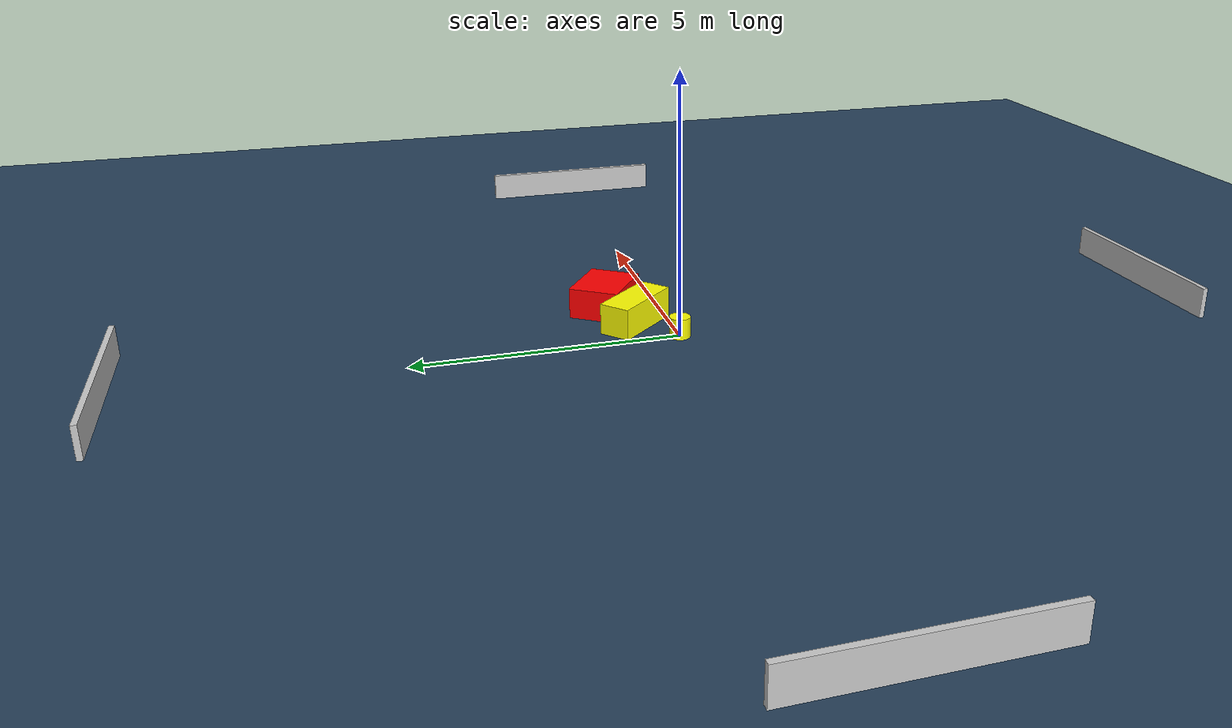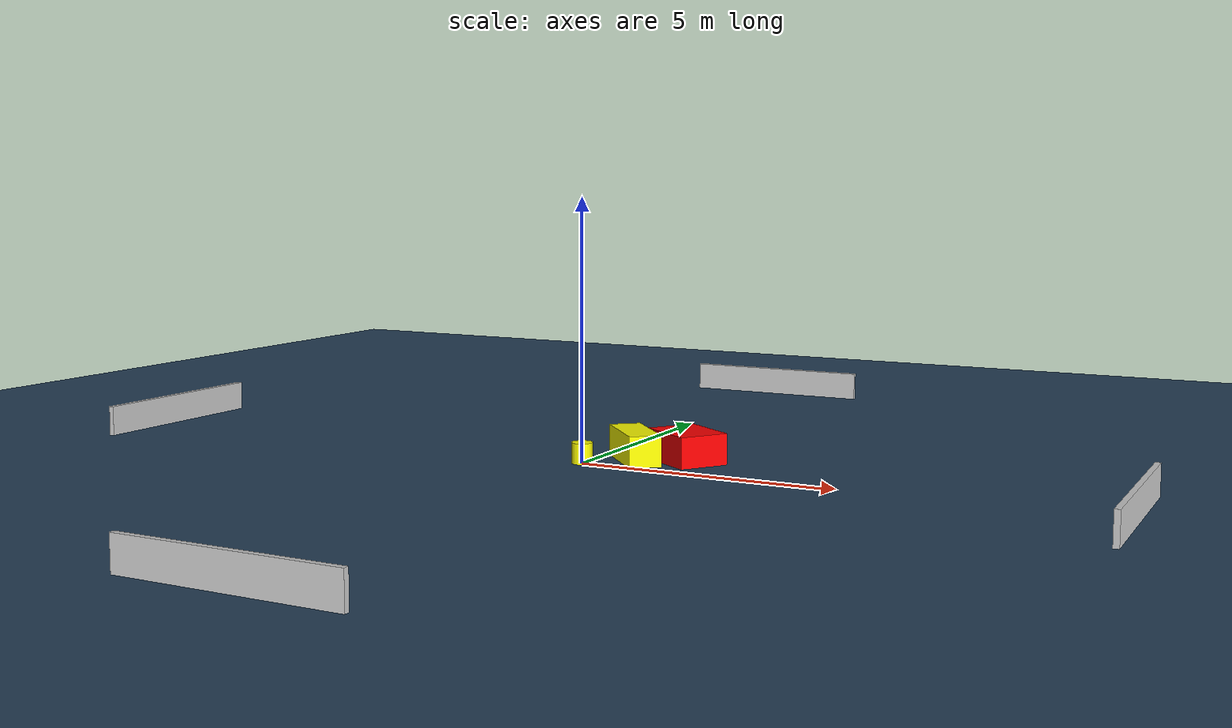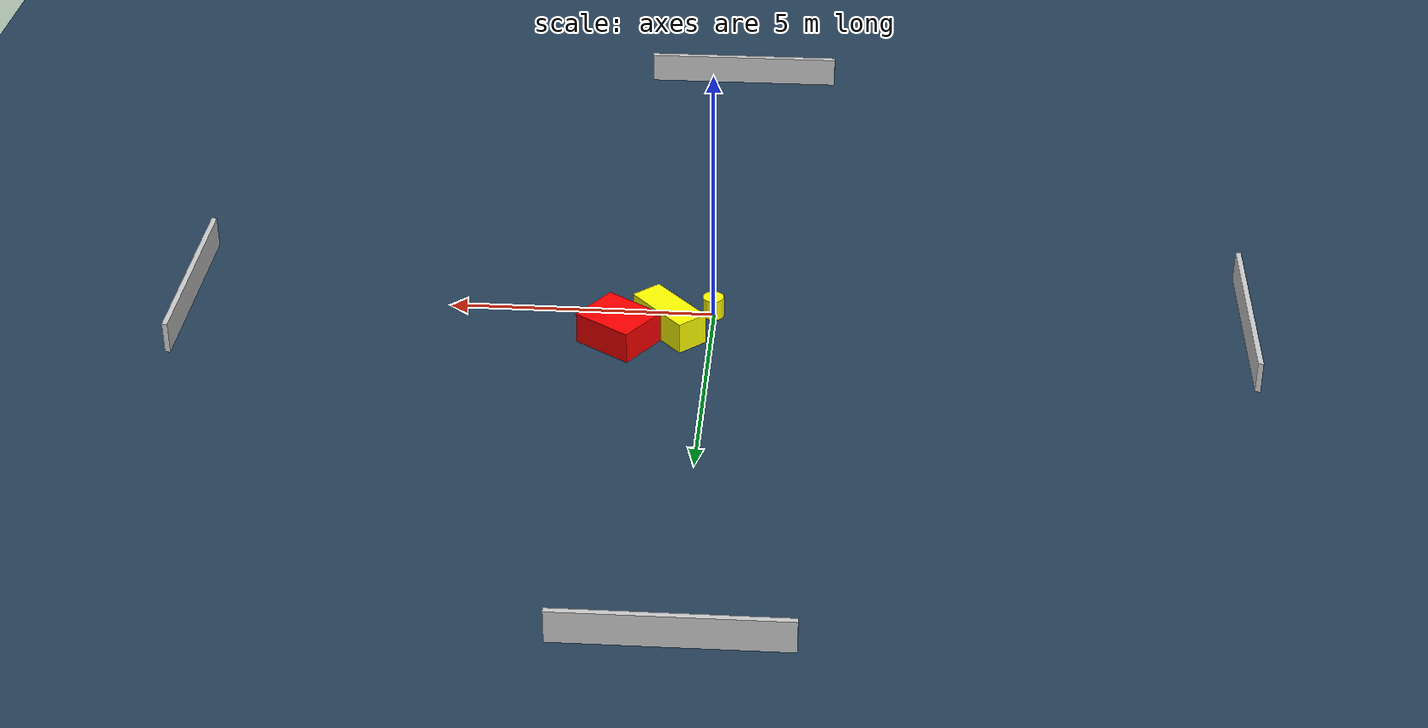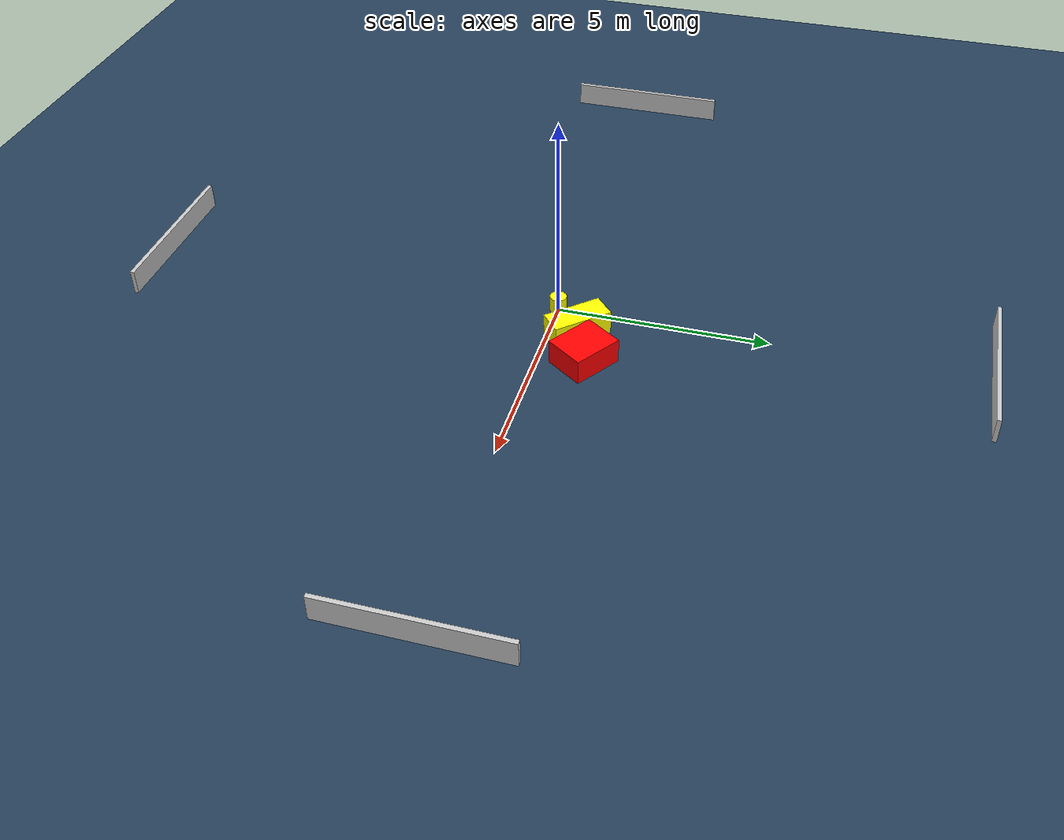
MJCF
<?xml version="1.0" ?>
<mujoco model="generated_environment">
  <option timestep="0.01" integrator="RK4" cone="elliptic"/>
  <default>
    <geom density="1"/>
  </default>
  <asset>
    <texture builtin="gradient" height="3072" name="skybox" rgb1="0.3 0.5 0.7" rgb2="0 0 0" type="skybox" width="512"/>
    <texture builtin="checker" height="300" name="groundplane" rgb1="0.2 0.3 0.4" rgb2="0.1 0.2 0.3" type="2d" width="300"/>
    <material name="groundplane" reflectance="0.2" texrepeat="5 5" texture="groundplane"/>
  </asset>
  <worldbody>
    <light dir="0 0 -1" directional="true" pos="0 0 1.5"/>
    <geom condim="3" friction="0.5 0.005 0.001" material="groundplane" name="floor" pos="0 0 0" size="0 0 0.05" type="plane"/>
    <body name="walls">
      <geom name="wall_1" condim="4" pos="-10.0 0.0 0.3" rgba="0.800000011920929 0.800000011920929 0.800000011920929 1.0" size="0.05 2.0 0.3" type="box"/>
      <geom name="wall_2" condim="4" pos="10.0 0.0 0.3" rgba="0.800000011920929 0.800000011920929 0.800000011920929 1.0" size="0.05 2.0 0.3" type="box"/>
      <geom name="wall_3" condim="4" pos="0.0 -10.0 0.3" rgba="0.800000011920929 0.800000011920929 0.800000011920929 1.0" size="2.0 0.05 0.3" type="box"/>
      <geom name="wall_4" condim="4" pos="0.0 10.0 0.3" rgba="0.800000011920929 0.800000011920929 0.800000011920929 1.0" size="2.0 0.05 0.3" type="box"/>
    </body>
    <body name="robot">
      <joint name="joint_x" type="slide" pos="0 0 0" axis="1 0 0"/>
      <joint name="joint_y" type="slide" pos="0 0 0" axis="0 1 0"/>
      <geom name="robot" type="cylinder" pos="0.0 0.0 0.2" size="0.2 0.2 0.0" mass="5.0" friction="1.0 0.005 0.0001" condim="4" rgba="1.0 1.0 0.0 1.0"/>
    </body>
    <body name="obstacle_1_movable">
      <geom name="obstacle_1_movable" condim="4" pos="0.7847077361299691 0.6626427057959823 0.3" euler="0 0 312.12248596048266" friction="0.0 0.005 0.001" rgba="1.0 1.0 0.0 1.0" size="0.7113873530351782 0.3076745995908863 0.3" type="box" mass="0.1"/>
      <joint type="free"/>
    </body>
    <body name="obstacle_2_static">
      <geom name="obstacle_2_static" condim="4" pos="1.6985831215399545 1.046622488604853 0.3" euler="0 0 145.65307851161546" friction="0.0 0.005 0.001" rgba="1.0 0.0 0.0 1.0" size="0.6037624487898355 0.4966162259386226 0.3" type="box"/>
    </body>
  </worldbody>
  <actuator>
    <motor name="actuator_x" joint="joint_x" gear="1" ctrlrange="-1 1"/>
    <motor name="actuator_y" joint="joint_y" gear="1" ctrlrange="-1 1"/>
  </actuator>
</mujoco>
